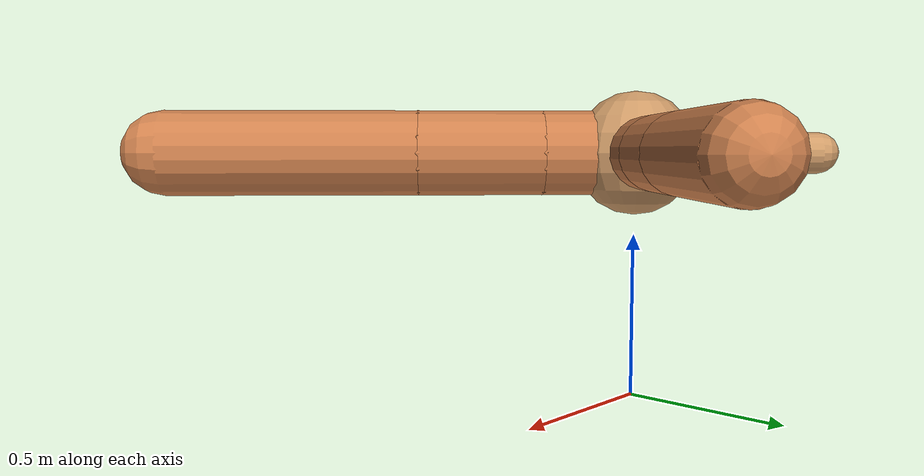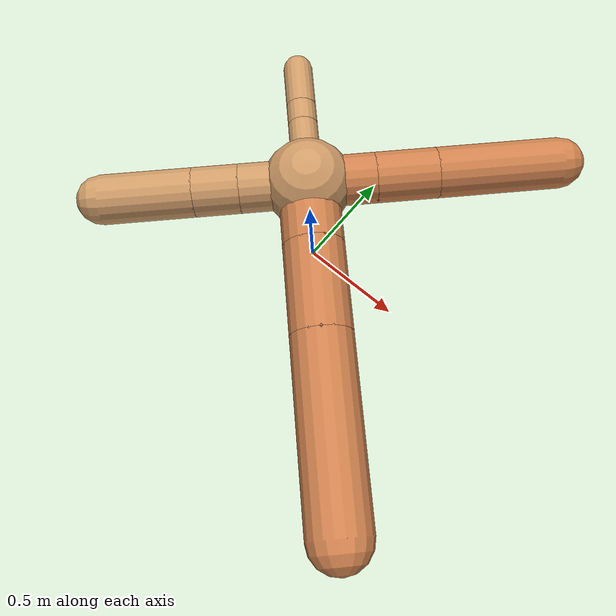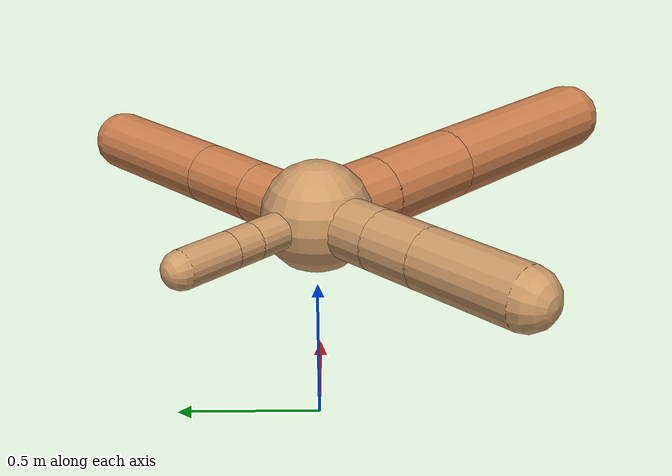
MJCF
<?xml version="1.0" ?>
<mujoco model="ant">

	<compiler angle="degree" coordinate="local" inertiafromgeom="true"/>

	<option integrator="RK4" timestep="0.01"/>

	<custom>

		<numeric data="0.0 0.0 0.55 1.0 0.0 0.0 0.0 0.0 1.0 0.0 -1.0 0.0 -1.0 0.0 1.0" name="init_qpos"/>

	</custom>

	<default>

		<joint armature="1" damping="1" limited="true"/>

		<geom conaffinity="0" condim="3" density="5.0" friction="1.5 0.1 0.1" margin="0.01" rgba="0.8 0.6 0.4 1"/>

	</default>

	<worldbody>

		<body name="torso" pos="0 0 0.75">

			<geom name="torso_geom" pos="0 0 0" size="0.18683337407467415" type="sphere"/>

			<!--joint armature="0" damping="0" limited="false" margin="0.01" name="root" pos="0 0 0" type="free"/-->

			<body name="front_left_leg" pos="0 0 0">

				<geom fromto="0 0 0 0.2 0.2 0" name="aux_1_geom" size="0.10578961086531917" type="capsule" rgba=".8 .5 .3 1"/>

				<body name="aux_1" pos="0.2 0.2 0">

					<joint axis="0 0 1" name="hip_1" pos="0.0 0.0 0.0" range="-40 40" type="hinge"/>

					<geom fromto="0 0 0 0.18127308668792425 0.18127308668792425 0" name="left_leg_geom" size="0.10578961086531917" type="capsule" rgba=".8 .5 .3 1"/>

					<body pos="0.18127308668792425 0.18127308668792425 0" name="front_left_foot">

						<joint axis="-1 1 0" name="ankle_1" pos="0.0 0.0 0.0" range="30 100" type="hinge"/>

						<geom fromto="0 0 0 0.3625461733758485 0.3625461733758485 0" name="left_ankle_geom" size="0.10578961086531917" type="capsule" rgba=".8 .5 .3 1"/>

					</body>

				</body>

			</body>

			<body name="front_right_leg" pos="0 0 0">

				<geom fromto="0 0 0 -0.2 0.2 0" name="aux_2_geom" size="0.0633515003710908" type="capsule"/>

				<body name="aux_2" pos="-0.2 0.2 0">

					<joint axis="0 0 1" name="hip_2" pos="0.0 0.0 0.0" range="-40 40" type="hinge"/>

					<geom fromto="0 0 0 -0.06603056300955094 0.06603056300955094 0" name="right_leg_geom" size="0.0633515003710908" type="capsule"/>

					<body pos="-0.06603056300955094 0.06603056300955094 0" name="front_right_foot">

						<joint axis="1 1 0" name="ankle_2" pos="0.0 0.0 0.0" range="-100 -30" type="hinge"/>

						<geom fromto="0 0 0 -0.1320611260191019 0.1320611260191019 0" name="right_ankle_geom" size="0.0633515003710908" type="capsule"/>

					</body>

				</body>

			</body>

			<body name="left_back_leg" pos="0 0 0">

				<geom fromto="0 0 0 -0.2 -0.2 0" name="aux_3_geom" size="0.10280303263214431" type="capsule"/>

				<body name="aux_3" pos="-0.2 -0.2 0">

					<joint axis="0 0 1" name="hip_3" pos="0.0 0.0 0.0" range="-40 40" type="hinge"/>

					<geom fromto="0 0 0 -0.1336910817384387 -0.1336910817384387 0" name="back_leg_geom" size="0.10280303263214431" type="capsule"/>

					<body pos="-0.1336910817384387 -0.1336910817384387 0" name="left_back_foot">

						<joint axis="-1 1 0" name="ankle_3" pos="0.0 0.0 0.0" range="-100 -30" type="hinge"/>

						<geom fromto="0 0 0 -0.2673821634768774 -0.2673821634768774 0" name="third_ankle_geom" size="0.10280303263214431" type="capsule"/>

					</body>

				</body>

			</body>

			<body name="right_back_leg" pos="0 0 0">

				<geom fromto="0 0 0 0.2 -0.2 0" name="aux_4_geom" size="0.127442572160961" type="capsule" rgba=".8 .5 .3 1"/>

				<body name="aux_4" pos="0.2 -0.2 0">

					<joint axis="0 0 1" name="hip_4" pos="0.0 0.0 0.0" range="-40 40" type="hinge"/>

					<geom fromto="0 0 0 0.2646694489969349 -0.2646694489969349 0" name="rightback_leg_geom" size="0.127442572160961" type="capsule" rgba=".8 .5 .3 1"/>

					<body pos="0.2646694489969349 -0.2646694489969349 0" name="right_back_foot">

						<joint axis="1 1 0" name="ankle_4" pos="0.0 0.0 0.0" range="30 100" type="hinge"/>

						<geom fromto="0 0 0 0.5293388979938698 -0.5293388979938698 0" name="fourth_ankle_geom" size="0.127442572160961" type="capsule" rgba=".8 .5 .3 1"/>

					</body>

				</body>

			</body>

		</body>

	</worldbody>

	<actuator>

		<motor ctrllimited="true" ctrlrange="-1.0 1.0" joint="hip_4" gear="150"/>

		<motor ctrllimited="true" ctrlrange="-1.0 1.0" joint="ankle_4" gear="150"/>

		<motor ctrllimited="true" ctrlrange="-1.0 1.0" joint="hip_1" gear="150"/>

		<motor ctrllimited="true" ctrlrange="-1.0 1.0" joint="ankle_1" gear="150"/>

		<motor ctrllimited="true" ctrlrange="-1.0 1.0" joint="hip_2" gear="150"/>

		<motor ctrllimited="true" ctrlrange="-1.0 1.0" joint="ankle_2" gear="150"/>

		<motor ctrllimited="true" ctrlrange="-1.0 1.0" joint="hip_3" gear="150"/>

		<motor ctrllimited="true" ctrlrange="-1.0 1.0" joint="ankle_3" gear="150"/>

	</actuator>

</mujoco>
